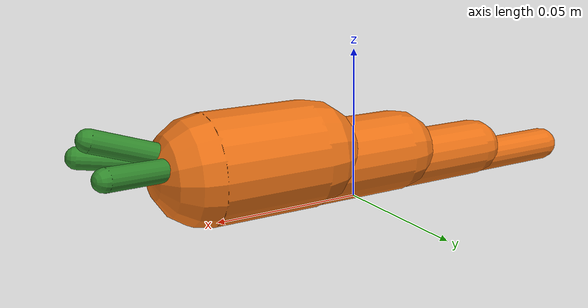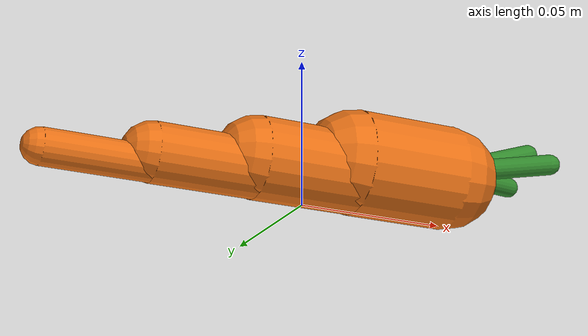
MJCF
<mujoco model="carrot">
  <compiler angle="radian" meshdir="." texturedir="."/>
  <asset>
  </asset>
  <worldbody>
    <body name="carrot" pos="0 0 0">
      <inertial pos="0.0118717 0 0.0148979" quat="0.52208 0.476899 0.476899 0.52208" mass="0.08" diaginertia="9.93704e-05 9.92014e-05 8.79242e-06"/>
      <site name="carrot_center" pos="0 0 0" size="0.005" rgba="0 0 0 0"/>
      <geom name="carrot_vis0" type="capsule" size="0.0059" fromto="-0.0863788 0 0.0059 -0.0513788 0 0.0059" rgba="0.92 0.45 0.09 1" group="2" contype="0" conaffinity="0"/>
      <geom name="carrot_col1" type="capsule" size="0.0059" fromto="-0.0863788 0 0.0059 -0.0513788 0 0.0059" rgba="0.5 0.5 0.5 0.3" group="3" condim="6" friction="1 0.02 0.004"/>
      <geom name="carrot_vis2" type="capsule" size="0.0098" fromto="-0.0513788 0 0.0098 -0.0163788 0 0.0098" rgba="0.92 0.45 0.09 1" group="2" contype="0" conaffinity="0"/>
      <geom name="carrot_col3" type="capsule" size="0.0098" fromto="-0.0513788 0 0.0098 -0.0163788 0 0.0098" rgba="0.5 0.5 0.5 0.3" group="3" condim="6" friction="1 0.02 0.004"/>
      <geom name="carrot_vis4" type="capsule" size="0.0137" fromto="-0.0163788 0 0.0137 0.0186212 0 0.0137" rgba="0.92 0.45 0.09 1" group="2" contype="0" conaffinity="0"/>
      <geom name="carrot_col5" type="capsule" size="0.0137" fromto="-0.0163788 0 0.0137 0.0186212 0 0.0137" rgba="0.5 0.5 0.5 0.3" group="3" condim="6" friction="1 0.02 0.004"/>
      <geom name="carrot_vis6" type="capsule" size="0.0176" fromto="0.0186212 0 0.0176 0.0536212 0 0.0176" rgba="0.92 0.45 0.09 1" group="2" contype="0" conaffinity="0"/>
      <geom name="carrot_col7" type="capsule" size="0.0176" fromto="0.0186212 0 0.0176 0.0536212 0 0.0176" rgba="0.5 0.5 0.5 0.3" group="3" condim="6" friction="1 0.02 0.004"/>
      <geom name="carrot_vis8" type="capsule" size="0.0035" fromto="0.0536212 0 0.0195 0.0876212 0 0.0315" rgba="0.20 0.55 0.18 1" group="2" contype="0" conaffinity="0"/>
      <geom name="carrot_vis9" type="capsule" size="0.0035" fromto="0.0536212 0 0.0195 0.0876212 0.013 0.0235" rgba="0.20 0.55 0.18 1" group="2" contype="0" conaffinity="0"/>
      <geom name="carrot_vis10" type="capsule" size="0.0035" fromto="0.0536212 0 0.0195 0.0876212 -0.013 0.0235" rgba="0.20 0.55 0.18 1" group="2" contype="0" conaffinity="0"/>
    </body>
  </worldbody>
</mujoco>
